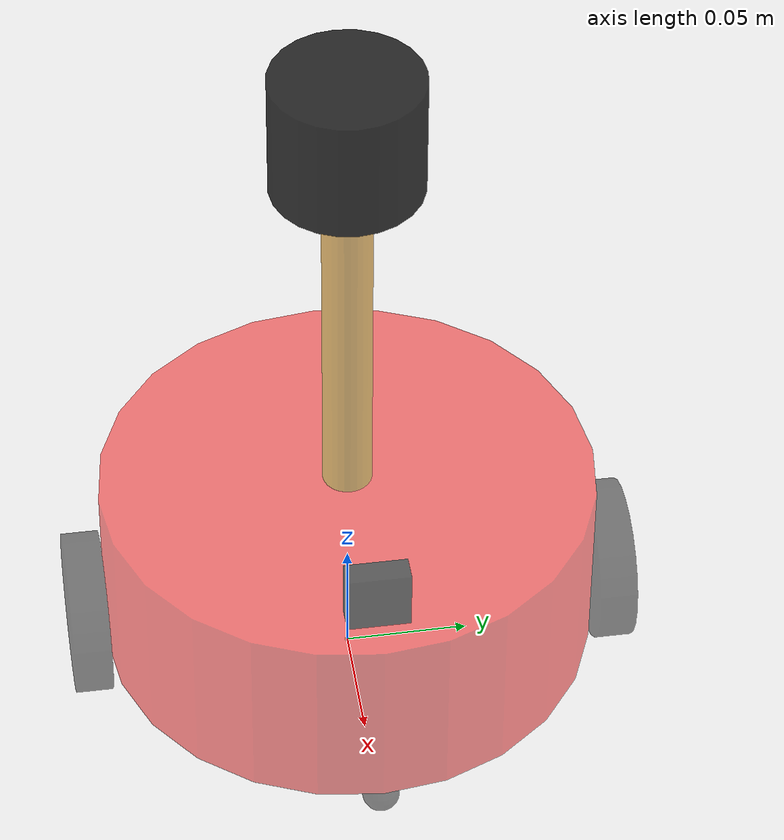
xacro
<robot xmlns:xacro="http://www.ros.org/wiki/xacro" name="my_car">
    <!-- 包含惯性矩的宏文件 -->
    <xacro:include filename="inertial.xacro"/>
    <xacro:include filename="car_base.xacro"/>
    <xacro:include filename="car_camera.xacro"/>
    <xacro:include filename="car_laser.xacro"/>
    <!-- 运动控制 -->
    <xacro:include filename="gazebo/move.xacro"/>
    <!-- 雷达 -->
    <xacro:include filename="gazebo/laser.xacro"/>
    <!-- 摄像头 -->
    <xacro:include filename="gazebo/camera.xacro"/>
    <!-- 深度相机 -->
    <xacro:include filename="gazebo/kinect.xacro"/>
</robot>

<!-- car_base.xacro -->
<robot xmlns:xacro="http://www.ros.org/wiki/xacro" name="my_car">
    <xacro:property name="footprint_radius" value="0.001"/>
    <xacro:property name="baselink_radius" value="0.1"/>
    <xacro:property name="baselink_length" value="0.08"/>
    <xacro:property name="baselink_mass" value="2"/>
    <xacro:property name="intervel" value="0.015"/>
    <xacro:property name="baselink_joint_z" value="${baselink_length / 2 + intervel}"/>
    <xacro:property name="PI" value="3.1415927"/>
    <xacro:property name="wheel_radius" value="0.0325"/>
    <xacro:property name="wheel_length" value="0.015"/>
    <xacro:property name="wheel_mass" value="0.5"/>
    <xacro:property name="wheel_joint_y" value="${baselink_radius + wheel_length / 2}"/>
    <xacro:property name="wheel_joint_z" value="${-(baselink_length / 2 + intervel - wheel_radius)}"/>
    <xacro:property name="small_wheel_radius" value="0.0075"/>
    <xacro:property name="small_wheel_mass" value="0.1"/>
    <xacro:property name="small_wheel_wheel_joint_x" value="${baselink_radius - small_wheel_radius}"/>
    <xacro:property name="small_wheel_wheel_joint_z" value="${-(baselink_length / 2 + intervel - small_wheel_radius)}"/>

    <!-- footprint -->
    <link name="base_footprint">
        <visual>
            <geometry>
                <sphere radius="${footprint_radius}"/>
            </geometry>
        </visual>
    </link>

    <!-- 底盘 -->
    <link name="base_link">
        <visual>
            <origin xyz="0.0 0.0 0.0" rpy="0.0 0.0 0.0"/>
            <geometry>
                <cylinder radius="${baselink_radius}" length="${baselink_length}"/>
            </geometry>
            <material name="baselink_colour">
                <color rgba="1.0 0.0 0.0 0.5"/>
            </material>
        </visual>

        <collision>
            <origin xyz="0.0 0.0 0.0" rpy="0.0 0.0 0.0"/>
            <geometry>
                <cylinder radius="${baselink_radius}" length="${baselink_length}"/>
            </geometry>
        </collision>

        <!-- 惯性矩宏 -->
        <xacro:cylinder_inertial_matrix m="${baselink_mass}" r="${baselink_radius}" h="${baselink_length}"/>
    </link>

    <gazebo reference="base_link">
        <material>Gazebo/Yellow</material>
    </gazebo>

    <joint name="link2footprint" type="fixed">
        <origin xyz="0.0 0.0 ${baselink_joint_z}" rpy="0.0 0.0 0.0"/>
        <parent link="base_footprint"/>
        <child link="base_link"/>
    </joint>

    <!-- 驱动轮 flag左轮为1右轮为-1-->
    <xacro:macro name="wheel_func" params="wheel_name flag">
        <link name="${wheel_name}_wheel">
            <visual>
                <origin xyz="0.0 0.0 0.0" rpy="${PI / 2} 0.0 0.0"/>
                <geometry>
                    <cylinder radius="${wheel_radius}" length="${wheel_length}"/>
                </geometry>
                <material name="wheel_colour">
                    <color rgba="0.0 0.0 0.0 0.5"/>
                </material>
            </visual>

            <collision>
                <origin xyz="0.0 0.0 0.0" rpy="${PI / 2} 0.0 0.0"/>
                <geometry>
                    <cylinder radius="${wheel_radius}" length="${wheel_length}"/>
                </geometry>
            </collision>

        <!-- 惯性矩宏 -->
            <xacro:cylinder_inertial_matrix m="${wheel_mass}" r="${wheel_radius}" h="${wheel_length}"/>
        </link>

        <gazebo reference="${wheel_name}_wheel">
            <material>Gazebo/Black</material>
        </gazebo>

        <joint name="${wheel_name}2baselink" type="continuous">
            <origin xyz="0.0 ${flag * wheel_joint_y} ${wheel_joint_z} " rpy="0.0 0.0 0.0"/>
            <parent link="base_link"/>
            <child link="${wheel_name}_wheel"/>
            <axis xyz="0.0 1 0.0"/>
        </joint>
    </xacro:macro>

    <!-- 万向轮 -->
    <xacro:macro name="small_wheel_func" params="small_wheel_name flag">
        <link name="${small_wheel_name}_wheel">
            <visual>
                <origin xyz="0.0 0.0 0.0" rpy="0.0 0.0 0.0"/>
                <geometry>
                    <sphere radius="${small_wheel_radius}"/>
                </geometry>
                <material name="wheel_colour">
                    <color rgba="0.0 0.0 0.0 0.5"/>
                </material>
            </visual>

            <collision>
                <origin xyz="0.0 0.0 0.0" rpy="0.0 0.0 0.0"/>
                <geometry>
                    <sphere radius="${small_wheel_radius}"/>
                </geometry>
            </collision>

        <!-- 惯性矩宏 -->
            <xacro:sphere_inertial_matrix m="${small_wheel_mass}" r="${small_wheel_radius}"/>
        </link>

        <gazebo reference="${small_wheel_name}_wheel">
            <material>Gazebo/Black</material>
        </gazebo>

        <joint name="${small_wheel_name}2baselink" type="continuous">
            <origin xyz="${flag * small_wheel_wheel_joint_x} 0.0 ${small_wheel_wheel_joint_z}" rpy="0.0 0.0 0.0"/>
            <parent link="base_link"/>
            <child link="${small_wheel_name}_wheel"/>
            <axis xyz="0 1 0"/>
        </joint>
    </xacro:macro>

    <xacro:wheel_func wheel_name="left" flag="1"/>
    <xacro:wheel_func wheel_name="right" flag="-1"/>

    <xacro:small_wheel_func small_wheel_name="front" flag="1"/>
    <xacro:small_wheel_func small_wheel_name="back" flag="-1"/>

</robot>

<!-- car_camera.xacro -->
<robot xmlns:xacro="http://www.ros.org/wiki/xacro" name="my_car">
    <xacro:property name="length" value="0.01"/>
    <xacro:property name="width" value="0.025"/>
    <xacro:property name="height" value="0.025"/>
    <xacro:property name="mass" value="0.01"/>
    <xacro:property name="joint_x" value="0.08"/>
    <xacro:property name="joint_y" value="0"/>
    <xacro:property name="joint_z" value="${(baselink_length + height) / 2}"/>

    <link name="camera">
        <visual>
            <origin xyz="0.0 0.0 0.0" rpy="0.0 0.0 0.0"/>
            <geometry>
                <box size="${length} ${width} ${height}"/>
            </geometry>
            <material name="black">
                <color rgba="0.0 0.0 0.0 0.6"/>
            </material>
        </visual>

        <collision>
            <origin xyz="0.0 0.0 0.0" rpy="0.0 0.0 0.0"/>
            <geometry>
                <box size="${length} ${width} ${height}"/>
            </geometry>
        </collision>

        <!-- 惯性矩宏 -->
        <xacro:Box_inertial_matrix m="${mass}" l="${length}" w="${width}" h="${height}"/>
    </link>

    <gazebo reference="camera">
        <material>Gazebo/Blue</material>
    </gazebo>

    <joint name="camera2baselink" type="fixed">
        <origin xyz="${joint_x} ${joint_y} ${joint_z}" rpy="0.0 0.0 0.0"/>
        <parent link="base_link"/>
        <child link="camera"/>
    </joint>

</robot>

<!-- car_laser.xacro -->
<robot xmlns:xacro="http://www.ros.org/wiki/xacro" name="my_car">
    <xacro:property name="support_radius" value="0.01"/>
    <xacro:property name="support_length" value="0.15"/>
    <xacro:property name="support_mass" value="0.02"/>
    <xacro:property name="laser_radius" value="0.03"/>
    <xacro:property name="laser_length" value="0.05"/>
    <xacro:property name="laser_mass" value="0.1"/>
    <xacro:property name="joint_support_x" value="0"/>
    <xacro:property name="joint_support_y" value="0"/>
    <xacro:property name="joint_support_z" value="${(baselink_length + support_length) / 2}"/>
    <xacro:property name="joint_laser_x" value="0"/>
    <xacro:property name="joint_laser_y" value="0"/>
    <xacro:property name="joint_laser_z" value="${(support_length + laser_length) / 2}"/>

    <link name="support">
        <visual>
            <origin xyz="0.0 0.0 0.0" rpy="0.0 0.0 0.0"/>
            <geometry>
                <cylinder radius="${support_radius}" length="${support_length}"/>
            </geometry>
            <material name="yellow">
                <color rgba="0.8 0.5 0.0 0.6"/>
            </material>
        </visual>

        <collision>
            <origin xyz="0.0 0.0 0.0" rpy="0.0 0.0 0.0"/>
            <geometry>
                <cylinder radius="${support_radius}" length="${support_length}"/>
            </geometry>
        </collision>

        <!-- 惯性矩宏 -->
        <xacro:cylinder_inertial_matrix m="${support_mass}" r="${support_radius}" h="${support_length}"/>
    </link>

    <gazebo reference="support">
        <material>Gazebo/White</material>
    </gazebo>

    <joint name="support2baselink" type="fixed">
        <origin xyz="${joint_support_x} ${joint_support_y} ${joint_support_z}" rpy="0.0 0.0 0.0"/>
        <parent link="base_link"/>
        <child link="support"/>
    </joint>

    <link name="laser">
        <visual>
            <origin xyz="0.0 0.0 0.0" rpy="0.0 0.0 0.0"/>
            <geometry>
                <cylinder radius="${laser_radius}" length="${laser_length}"/>
            </geometry>
            <material name="black">
                <color rgba="0.0 0.0 0.0 0.8"/>
            </material>
        </visual>

        <collision>
            <origin xyz="0.0 0.0 0.0" rpy="0.0 0.0 0.0"/>
            <geometry>
                <cylinder radius="${laser_radius}" length="${laser_length}"/>
            </geometry>
        </collision>

        <!-- 惯性矩宏 -->
        <xacro:cylinder_inertial_matrix m="${laser_mass}" r="${laser_radius}" h="${laser_length}"/>
    </link>

    <gazebo reference="laser">
        <material>Gazebo/Red</material>
    </gazebo>

    <joint name="laser2support" type="fixed">
        <origin xyz="${joint_laser_x} ${joint_laser_y} ${joint_laser_z}" rpy="0.0 0.0 0.0"/>
        <parent link="support"/>
        <child link="laser"/>
    </joint>
</robot>
